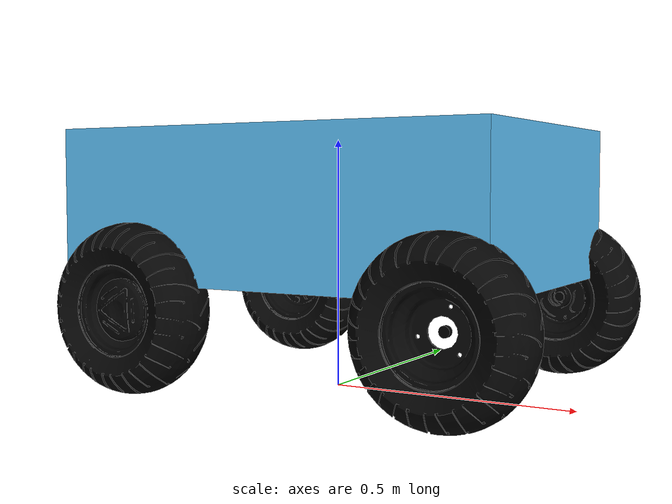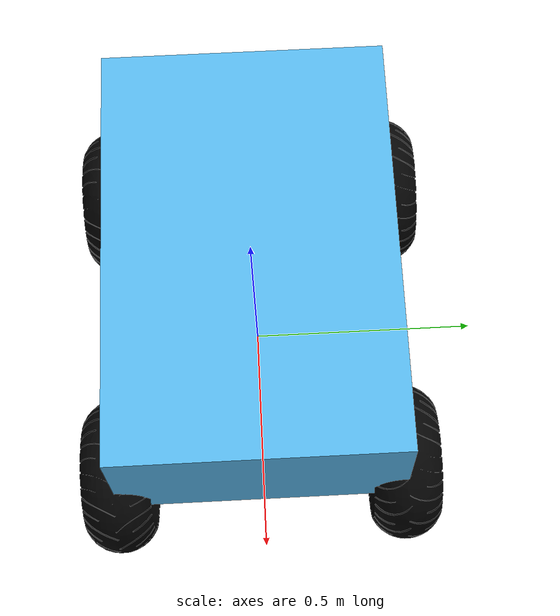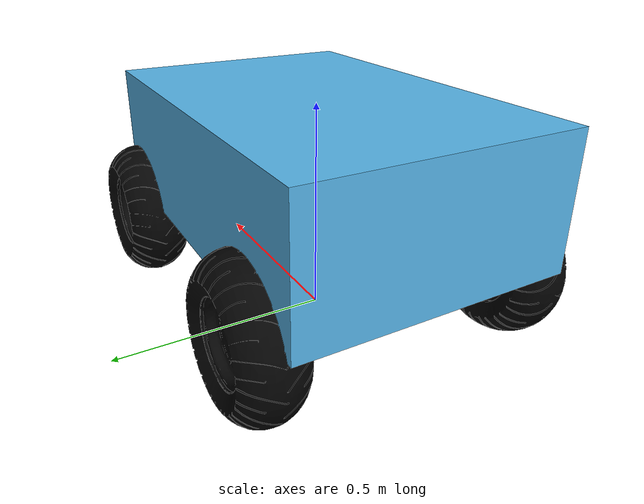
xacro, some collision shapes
<?xml version="1.0"?>
<robot xmlns:xacro="http://www.ros.org/wiki/xacro">

  <!-- Include the inertial values from the following -->
  <xacro:include filename="inertial_macros.xacro"/>
  <xacro:include filename="meshes.xacro"/>

  <!-- Constants for robot dimensions -->
  <xacro:property name="z_base_to_wheel" value="-0.19558" />
  <xacro:property name="x_base_to_rear" value="-0.28" />
  <xacro:property name="x_base_to_front" value="0.37142" />
  <xacro:property name="y_base_to_wheel" value="0.2925" />
  <xacro:property name="max_steer_angle_central" value="0.461" />

  <link name="base_link"/>

  <joint name="chassis_joint" type="fixed">
    <parent link="base_link"/>
    <child link="chassis"/>
    <origin rpy="0 0 0" xyz="0 0 0.37"/>
  </joint>

  <link name="chassis">
    <xacro:mesh name="chassis"/>
    <xacro:inertial_chassis/>
  </link>

  <link name="rear_left_wheel">
    <xacro:mesh name="rear_left_wheel"/>
    <xacro:inertial_wheel/>
  </link>
  <joint name="rear_left_wheel_joint" type="continuous">
    <parent link="chassis"/>
    <child link="rear_left_wheel"/>
    <origin xyz="${x_base_to_rear} ${y_base_to_wheel} ${z_base_to_wheel}" rpy="${pi/2} 0 0" />
    <axis xyz="0 0 -1" />
    <dynamics damping="0.01" friction="0.1"/>
    <limit effort="100.0" velocity="100.0"/>
  </joint>
  <xacro:gazebo_friction reference="rear_left_wheel"/>

  <link name="rear_right_wheel">
    <xacro:mesh name="rear_right_wheel"/>
    <xacro:inertial_wheel/>
  </link>
  <joint name="rear_right_wheel_joint" type="continuous">
    <parent link="chassis"/>
    <child link="rear_right_wheel"/>
    <origin xyz="${x_base_to_rear} -${y_base_to_wheel} ${z_base_to_wheel}" rpy="${pi/2} 0 0" />
    <axis xyz="0 0 -1"/>
    <dynamics damping="0.01" friction="0.1"/>
    <limit effort="100.0" velocity="100.0"/>
  </joint>
  <xacro:gazebo_friction reference="rear_right_wheel"/>

  <link name="front_left_steering_link">
    <xacro:virtual/>
    <xacro:inertial_steering_link/>
  </link>
  <joint name="front_left_steering_joint" type="revolute">
    <parent link="chassis"/>
    <child link="front_left_steering_link"/>
    <origin xyz="${x_base_to_front} ${y_base_to_wheel} ${z_base_to_wheel}" rpy="${pi/2} 0 0" />
    <axis   xyz="0 1 0" />
    <limit  lower="-${max_steer_angle_central}"  upper="${max_steer_angle_central}"  effort="10.0"  velocity="1" />
    <dynamics damping="1.0"/>
  </joint>

  <link name="front_left_wheel">
    <xacro:mesh name="front_left_wheel"/>
    <xacro:inertial_wheel/>
  </link>
  <joint name="front_left_wheel_joint" type="continuous">
    <parent link="front_left_steering_link"/>
    <child link="front_left_wheel"/>
    <origin xyz="0 0 0" rpy="0 0 0" />
    <axis   xyz="0 0 -1" />
  </joint>

  <link name="front_right_steering_link">
    <xacro:virtual/>
    <xacro:inertial_steering_link/>
  </link>
  <joint name="front_right_steering_joint" type="revolute">
    <parent link="chassis"/>
    <child link="front_right_steering_link"/>
    <origin xyz="${x_base_to_front}  -${y_base_to_wheel} ${z_base_to_wheel}" rpy="${pi/2} 0 0" />
    <axis   xyz="0 1 0" />
    <limit  lower="-${max_steer_angle_central}"  upper="${max_steer_angle_central}"  effort="10.0"  velocity="1" />
    <dynamics damping="1.0"/>
  </joint>

  <link name="front_right_wheel">
    <xacro:mesh name="front_right_wheel"/>
    <xacro:inertial_wheel/>
  </link>
  <joint name="front_right_wheel_joint" type="continuous">
    <parent link="front_right_steering_link"/>
    <child link="front_right_wheel"/>
    <origin xyz="0 0 0" rpy="0 0 0" />
    <axis   xyz="0 0 -1" />
  </joint>

</robot>

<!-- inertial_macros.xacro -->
<robot xmlns:xacro="http://www.ros.org/wiki/xacro" >

  <xacro:macro name="inertial_chassis">
    <inertial>
      <origin
        xyz="0.0266989327622036 0.000409203500587652 -0.135901124750884"
        rpy="0 0 0" />
      <mass
        value="72" />
      <inertia
        ixx="0.0332370959804736"
        ixy="-1.013150489971E-06"
        ixz="-0.00188859201421112"
        iyy="0.111072002332437"
        iyz="-5.13308150598312E-07"
        izz="0.12660862809283" />
    </inertial>
  </xacro:macro>

  <xacro:macro name="inertial_wheel">
    <inertial>
      <origin
        xyz="-6.5774E-06 2.0242E-05 -0.0096386"
        rpy="0 0 0" />
      <mass
        value="7.0" />
      <inertia
        ixx="0.063724"
        ixy="0"
        ixz="0"
        iyy="0.063724"
        iyz="0"
        izz="0.11072" />
    </inertial>
  </xacro:macro>

  <xacro:macro name="inertial_steering_link">
    <inertial>
      <origin
        xyz="0 0 0"
        rpy="0 0 0" />
      <mass
        value="0.005" />
      <inertia
        ixx="0.1"
        ixy="0"
        ixz="0"
        iyy="0.1"
        iyz="0"
        izz="0.1" />
    </inertial>
  </xacro:macro>

</robot>

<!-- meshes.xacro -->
<robot xmlns:xacro="http://www.ros.org/wiki/xacro" >

  <xacro:macro name="mesh" params="name">
    <visual>
      <origin xyz="0 0 0" rpy="0 0 0"/>
      <geometry>
        <mesh filename="file://$(find hunter_description)/meshes/${name}.dae" />
      </geometry>
    </visual>
    <collision>
      <origin xyz="0 0 0" rpy="0 0 0"/>
      <geometry>
        <xacro:if value="${name == 'chassis'}">
          <box size="0.90 0.60 0.30"/>
        </xacro:if>
        <xacro:if value="${name == 'rear_left_wheel'}">
          <cylinder length="0.07" radius="0.165"/>
        </xacro:if>
        <xacro:if value="${name == 'rear_right_wheel'}">
          <cylinder length="0.07" radius="0.165"/>
        </xacro:if>
        <xacro:if value="${name == 'front_left_wheel'}">
          <cylinder length="0.07" radius="0.165"/>
        </xacro:if>
        <xacro:if value="${name == 'front_right_wheel'}">
          <cylinder length="0.07" radius="0.165"/>
        </xacro:if>
      </geometry>
    </collision>
  </xacro:macro>

  <xacro:macro name="virtual">
    <visual>
      <origin xyz="0 0 0" rpy="0 0 0"/>
      <geometry>
        <cylinder length="0.01" radius="0.01"/>
      </geometry>
      <material name="invisible">
        <color rgba="0.0 0.0 0.0 0.0"/>
      </material>
    </visual>
  </xacro:macro>

  <xacro:macro name="gazebo_friction" params="reference">
    <gazebo reference="${reference}">
      <mu1 value="1.0"/>
      <mu2 value="0.5"/>
      <kp value="10000000.0" />
      <kd value="1.0" />
      <fdir1 value="1 0 0"/>
    </gazebo>
  </xacro:macro>

</robot>
